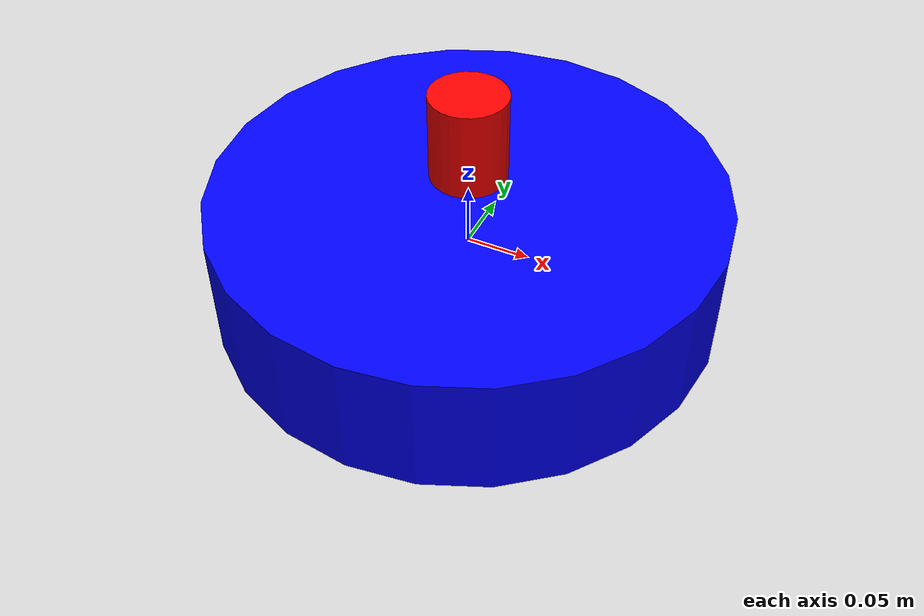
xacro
<?xml version="1.0"?>
<robot name="single_wheel_robot" xmlns:xacro="http://www.ros.org/wiki/xacro">

  <xacro:arg name="ns" default="" />
  <!-- World Link (必须显式定义) -->
  <link name="world"/>

  <!-- Base Link: 圆柱形底盘 -->
  <link name="$(arg ns)/base_link">
    <!-- 视觉模型 -->
    <visual>
      <geometry>
        <cylinder length="0.1" radius="0.2"/>
      </geometry>
      <material name="blue">
        <color rgba="0 0 1 1"/>
      </material>
    </visual>

    <!-- 碰撞模型 -->
    <collision>
      <geometry>
        <cylinder length="0.1" radius="0.2"/>
      </geometry>
    </collision>

    <!-- 惯性参数 不要惯性-->
    <inertial>
      <mass value="5"/>
      <inertia ixx="0.1" ixy="0" ixz="0" iyy="0.1" iyz="0" izz="0.1"/>
    </inertial>
  </link>

  <!-- 虚拟平面关节 -->
  <joint name="$(arg ns)/base_joint" type="planar">
    <parent link="world"/>
    <child link="$(arg ns)/base_link"/>
    <origin xyz="0 0 0" rpy="0 0 0"/>
  </joint>

  <!-- 激光雷达Link -->
  <link name="$(arg ns)/lidar_link">
    <!-- 视觉模型 -->
    <visual>
      <geometry>
        <cylinder length="0.07" radius="0.03"/> <!-- 小型圆柱体表示雷达 -->
      </geometry>
      <material name="red">
        <color rgba="1 0 0 1"/>
      </material>
    </visual>

    <!-- 碰撞模型 -->
    <collision>
      <geometry>
        <cylinder length="0.07" radius="0.03"/>
      </geometry>
    </collision>

    <!-- 惯性参数 -->
    <inertial>
      <mass value="0.1"/>  <!-- 质量轻 -->
      <inertia ixx="0.1" ixy="0" ixz="0" iyy="0.1" iyz="0" izz="0.1"/>
    </inertial>
  </link>

  <!-- 激光雷达关节（固定在底盘上） -->
  <joint name="$(arg ns)/lidar_joint" type="fixed">
    <parent link="$(arg ns)/base_link"/>
    <child link="$(arg ns)/lidar_link"/>
    <origin xyz="0 0 0.1" rpy="0 0 0"/> <!-- 位于底盘中心上方0.1m处 -->
  </joint>

  <gazebo>
    <!-- 平面运动控制器 -->
    <plugin name="planar_move_controller" filename="libgazebo_ros_planar_move.so">
      <commandTopic>cmd_vel</commandTopic>       <!-- 速度指令话题 -->
      <odometryTopic>odom</odometryTopic>        <!-- 里程计话题 -->
      <odometryFrame>world</odometryFrame>       <!-- 里程计参考坐标系 -->
      <robotBaseFrame>$(arg ns)/base_link</robotBaseFrame> <!-- 机器人基准坐标系 -->
      <publishOdom>true</publishOdom>           <!-- 是否发布里程计 -->
    </plugin>

    <material>Gazebo/Blue</material>
  </gazebo>

<!-- 3D激光雷达 -->
<gazebo reference="$(arg ns)/lidar_link">
  <sensor type="ray" name="velodyne_sensor">
    <pose>0 0 0.06 0 0 0</pose>
    <visualize>false</visualize><!-- 改为false，不显示激光线 -->
    <update_rate>10</update_rate>
    <ray>
      <scan>
        <horizontal>
          <samples>360</samples>
          <resolution>1</resolution>
          <min_angle>-3.14159265</min_angle>
          <max_angle>3.14159265</max_angle>
        </horizontal>
        <vertical>
          <samples>16</samples>
          <resolution>1</resolution>
          <min_angle>-0.261799</min_angle>
          <max_angle>0</max_angle>
        </vertical>
      </scan>
      <range>
        <min>0.1</min>
        <max>10.0</max>
        <resolution>0.01</resolution><!-- 激光雷达的距离分辨率，表示测量距离的最小单位（以米为单位） -->
      </range>
      <noise>
        <type>gaussian</type>
        <mean>0.0</mean>
        <stddev>0.01</stddev>
      </noise>
    </ray>
    <plugin name="velodyne_ros_controller" filename="libgazebo_ros_velodyne_laser.so">
      <topicName>velodyne_points</topicName>
      <frameName>lidar_link</frameName>
      <min_range>0.1</min_range>
      <max_range>5.0</max_range>
      <gaussianNoise>0.008</gaussianNoise>
    </plugin>
  </sensor>
</gazebo>

</robot>
